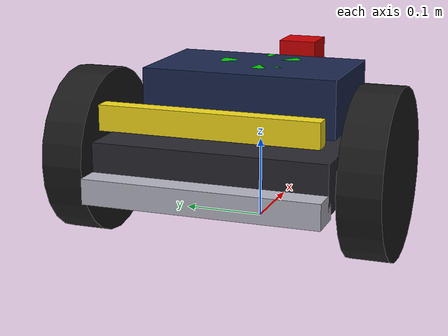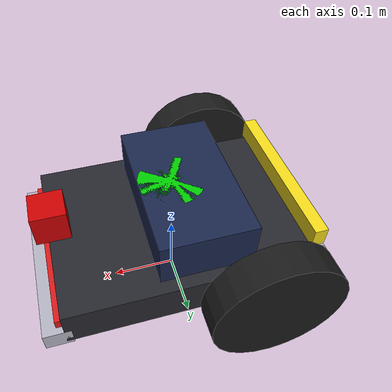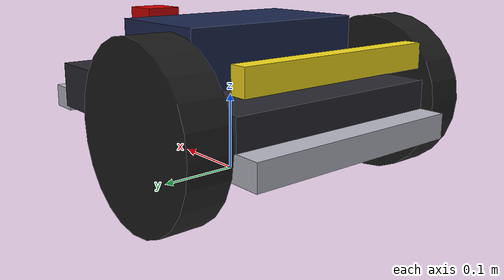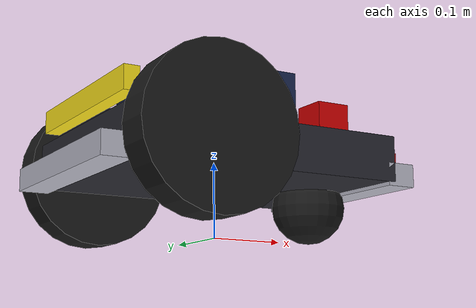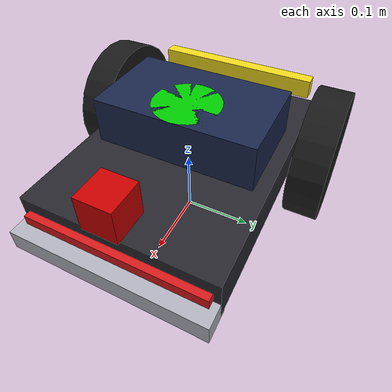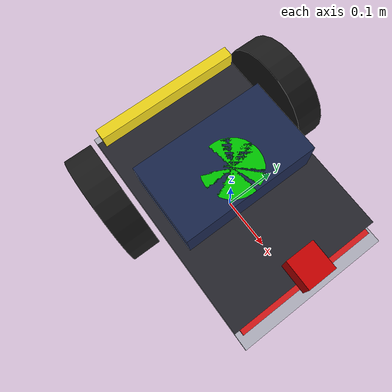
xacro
<?xml version="1.0"?>
<robot xmlns:xacro="http://www.ros.org/wiki/xacro" name="visiobot">

  <xacro:property name="chassis_length" value="0.4"/>
  <xacro:property name="chassis_width" value="0.3"/>
  <xacro:property name="chassis_height" value="0.1"/>
  <xacro:property name="chassis_mass" value="1.5"/>

  <xacro:property name="wheel_radius" value="0.1"/>
  <xacro:property name="wheel_length" value="0.05"/>
  <xacro:property name="wheel_mass" value="0.3"/>

  <xacro:macro name="box_inertia" params="m l w h">
    <inertial>
      <origin xyz="0 0 0" rpy="0 0 0"/>
      <mass value="${m}"/>
      <inertia ixx="${(1/12) * m * (w*w + h*h)}" ixy="0.0" ixz="0.0"
               iyy="${(1/12) * m * (l*l + h*h)}" iyz="0.0"
               izz="${(1/12) * m * (l*l + w*w)}"/>
    </inertial>
  </xacro:macro>

  <xacro:macro name="cylinder_inertia" params="m r h">
    <inertial>
      <origin xyz="0 0 0" rpy="0 0 0"/>
      <mass value="${m}"/>
      <inertia ixx="${(1/12) * m * (3*r*r + h*h)}" ixy="0.0" ixz="0.0"
               iyy="${(1/12) * m * (3*r*r + h*h)}" iyz="0.0"
               izz="${(1/2) * m * r*r}"/>
    </inertial>
  </xacro:macro>

  <xacro:macro name="sphere_inertia" params="m r">
    <inertial>
      <origin xyz="0 0 0" rpy="0 0 0"/>
      <mass value="${m}"/>
      <inertia ixx="${(2/5) * m * r*r}" ixy="0.0" ixz="0.0"
               iyy="${(2/5) * m * r*r}" iyz="0.0"
               izz="${(2/5) * m * r*r}"/>
    </inertial>
  </xacro:macro>

  <!-- base_footprint sits at ground level (z=0). base_link center is raised
       by wheel_radius so the wheel bottoms touch z=0. -->
  <link name="base_footprint"/>
  <joint name="base_footprint_joint" type="fixed">
    <parent link="base_footprint"/>
    <child link="base_link"/>
    <origin xyz="0 0 0.1" rpy="0 0 0"/>
  </joint>

  <link name="base_link">
    <visual>
      <geometry><box size="0.38 0.28 0.06"/></geometry>
      <material name="car_body"><color rgba="0.15 0.15 0.18 1.0"/></material>
    </visual>
    <visual>
      <origin xyz="0.14 0 -0.01" rpy="0 0 0"/>
      <geometry><box size="0.12 0.26 0.04"/></geometry>
      <material name="car_hood"><color rgba="0.85 0.1 0.1 1.0"/></material>
    </visual>
    <visual>
      <origin xyz="-0.02 0 0.065" rpy="0 0 0"/>
      <geometry><box size="0.14 0.24 0.07"/></geometry>
      <material name="car_cabin"><color rgba="0.1 0.15 0.3 1.0"/></material>
    </visual>
    <visual>
      <origin xyz="-0.18 0 0.06" rpy="0 0 0"/>
      <geometry><box size="0.02 0.26 0.03"/></geometry>
      <material name="car_spoiler"><color rgba="0.95 0.85 0.1 1.0"/></material>
    </visual>
    <visual>
      <origin xyz="0.2 0 -0.02" rpy="0 0 0"/>
      <geometry><box size="0.04 0.28 0.03"/></geometry>
      <material name="car_bumper_front"><color rgba="0.7 0.7 0.75 1.0"/></material>
    </visual>
    <visual>
      <origin xyz="-0.2 0 -0.02" rpy="0 0 0"/>
      <geometry><box size="0.04 0.28 0.03"/></geometry>
      <material name="car_bumper_rear"><color rgba="0.7 0.7 0.75 1.0"/></material>
    </visual>
    <collision>
      <geometry><box size="${chassis_length} ${chassis_width} ${chassis_height}"/></geometry>
    </collision>
    <xacro:box_inertia m="${chassis_mass}" l="${chassis_length}" w="${chassis_width}" h="${chassis_height}"/>
  </link>

  <!-- Wheel macro: material name includes prefix to avoid duplicate names in Gazebo Harmonic -->
  <xacro:macro name="wheel" params="prefix y_reflect rpy_val">
    <link name="${prefix}_wheel">
      <visual>
        <geometry><cylinder radius="${wheel_radius}" length="${wheel_length}"/></geometry>
        <material name="${prefix}_wheel_black"><color rgba="0.1 0.1 0.1 1.0"/></material>
      </visual>
      <collision>
        <geometry><cylinder radius="${wheel_radius}" length="${wheel_length}"/></geometry>
      </collision>
      <xacro:cylinder_inertia m="${wheel_mass}" r="${wheel_radius}" h="${wheel_length}"/>
    </link>
    <joint name="base_to_${prefix}_wheel" type="continuous">
      <parent link="base_link"/>
      <child link="${prefix}_wheel"/>
      <origin xyz="-0.1 ${y_reflect * 0.175} 0" rpy="${rpy_val} 0 0"/>
      <axis xyz="0 0 1"/>
    </joint>
  </xacro:macro>
  <xacro:wheel prefix="right" y_reflect="-1" rpy_val="1.5708"/>
  <xacro:wheel prefix="left" y_reflect="1" rpy_val="-1.5708"/>

  <link name="caster_wheel">
    <visual>
      <geometry><sphere radius="0.05"/></geometry>
      <material name="caster_black"><color rgba="0.1 0.1 0.1 1.0"/></material>
    </visual>
    <collision><geometry><sphere radius="0.05"/></geometry></collision>
    <xacro:sphere_inertia m="0.1" r="0.05"/>
  </link>
  <joint name="base_to_caster" type="fixed">
    <parent link="base_link"/>
    <child link="caster_wheel"/>
    <origin xyz="0.15 0.0 -0.05" rpy="0 0 0"/>
  </joint>

  <link name="camera_link">
    <visual>
      <geometry><box size="0.05 0.05 0.05"/></geometry>
      <material name="red"><color rgba="0.8 0.0 0.0 1.0"/></material>
    </visual>
    <collision><geometry><box size="0.05 0.05 0.05"/></geometry></collision>
    <xacro:box_inertia m="0.1" l="0.05" w="0.05" h="0.05"/>
  </link>
  <joint name="base_to_camera" type="fixed">
    <parent link="base_link"/>
    <child link="camera_link"/>
    <origin xyz="0.18 0.0 0.075" rpy="0 0 0"/>
  </joint>

  <joint name="camera_optical_joint" type="fixed">
    <parent link="camera_link"/>
    <child link="camera_link_optical"/>
    <origin xyz="0 0 0" rpy="-1.5708 0 -1.5708"/>
  </joint>
  <link name="camera_link_optical"></link>

  <link name="laser_link">
    <visual>
      <geometry><cylinder radius="0.05" length="0.05"/></geometry>
      <material name="green"><color rgba="0.0 0.8 0.0 1.0"/></material>
    </visual>
    <collision><geometry><cylinder radius="0.05" length="0.05"/></geometry></collision>
    <xacro:cylinder_inertia m="0.2" r="0.05" h="0.05"/>
  </link>
  <joint name="base_to_laser" type="fixed">
    <parent link="base_link"/>
    <child link="laser_link"/>
    <origin xyz="0.0 0.0 0.075" rpy="0 0 0"/>
  </joint>

  <gazebo reference="base_link"><material>Gazebo/Blue</material></gazebo>
  <gazebo reference="right_wheel"><material>Gazebo/Black</material></gazebo>
  <gazebo reference="left_wheel"><material>Gazebo/Black</material></gazebo>

  <gazebo reference="camera_link">
    <material>Gazebo/Red</material>
    <sensor name="camera_sensor" type="camera">
      <pose>0 0 0 0 0 0</pose>
      <always_on>true</always_on>
      <visualize>true</visualize>
      <update_rate>10.0</update_rate>
      <camera>
        <horizontal_fov>1.089</horizontal_fov>
        <image>
          <width>640</width>
          <height>480</height>
          <format>R8G8B8</format>
        </image>
        <clip>
          <near>0.05</near>
          <far>8.0</far>
        </clip>
        <noise>
          <type>gaussian</type>
          <mean>0.0</mean>
          <stddev>0.007</stddev>
        </noise>
        <camera_info_topic>camera/camera_info</camera_info_topic>
      </camera>
      <topic>/camera/image_raw</topic>
      <gz_frame_id>camera_link_optical</gz_frame_id>
    </sensor>
  </gazebo>

  <gazebo reference="laser_link">
    <material>Gazebo/Green</material>
    <sensor name="laser_sensor" type="gpu_lidar">
      <pose>0 0 0 0 0 0</pose>
      <always_on>true</always_on>
      <visualize>true</visualize>
      <update_rate>10.0</update_rate>
      <lidar>
        <scan>
          <horizontal>
            <samples>360</samples>
            <resolution>1</resolution>
            <min_angle>-3.14159</min_angle>
            <max_angle>3.14159</max_angle>
          </horizontal>
        </scan>
        <range>
          <min>0.25</min>
          <max>10.0</max>
          <resolution>0.015</resolution>
        </range>
        <noise>
          <type>gaussian</type>
          <mean>0.0</mean>
          <stddev>0.01</stddev>
        </noise>
      </lidar>
      <topic>/scan</topic>
      <gz_frame_id>laser_link</gz_frame_id>
    </sensor>
  </gazebo>

  <gazebo>
    <plugin filename="gz-sim-diff-drive-system" name="gz::sim::systems::DiffDrive">
      <left_joint>base_to_left_wheel</left_joint>
      <right_joint>base_to_right_wheel</right_joint>
      <wheel_separation>0.35</wheel_separation>
      <wheel_radius>0.1</wheel_radius>
      <topic>/cmd_vel</topic>
      <odom_topic>/odom</odom_topic>
      <tf_topic>/tf</tf_topic>
      <frame_id>odom</frame_id>
      <child_frame_id>base_footprint</child_frame_id>
    </plugin>

    <plugin filename="gz-sim-joint-state-publisher-system" name="gz::sim::systems::JointStatePublisher">
      <topic>/joint_states</topic>
      <joint_name>base_to_left_wheel</joint_name>
      <joint_name>base_to_right_wheel</joint_name>
    </plugin>
  </gazebo>

</robot>
